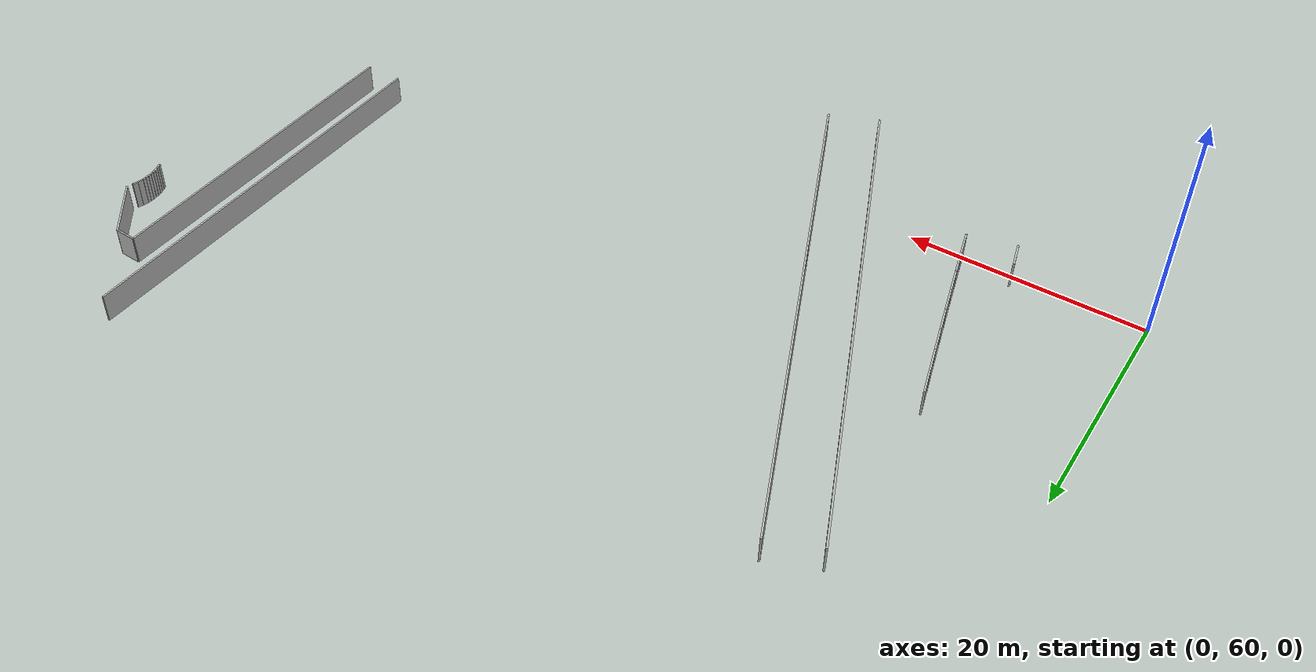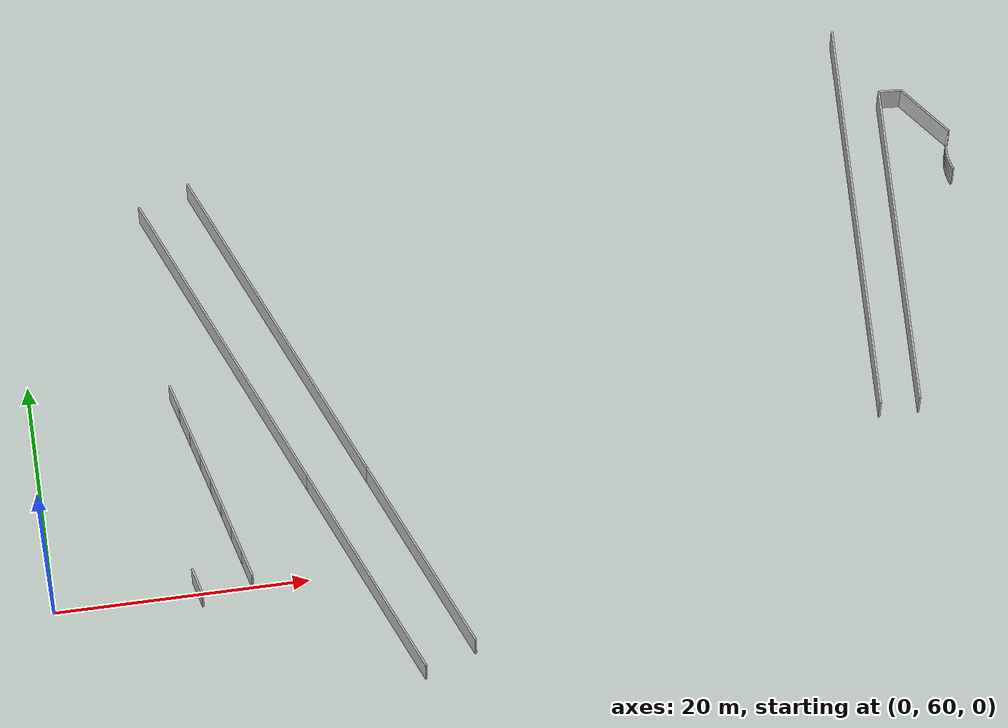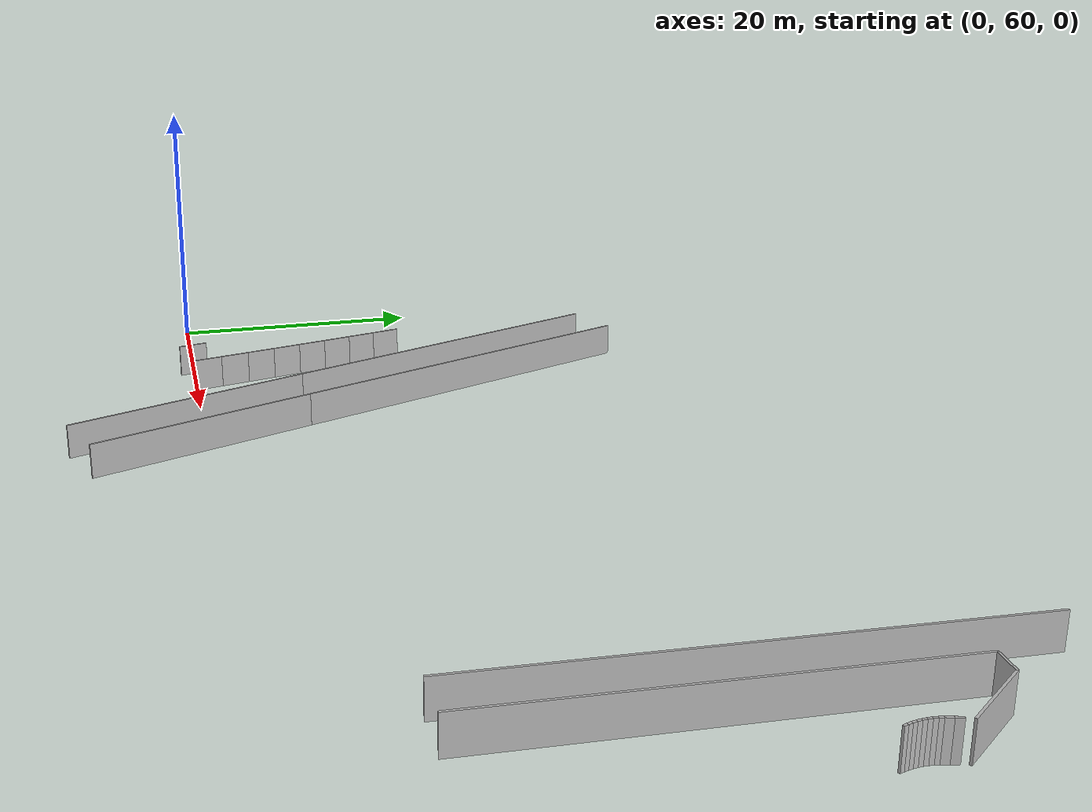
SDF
<sdf version="1.6">
 <model name="sps_2314">
  <static>1</static>
  <allow_auto_disable>0</allow_auto_disable>
  <link name="Wall81">
   <collision name="collision"><geometry><box><size>1.7975 0.15 2.5</size></box></geometry></collision>
   <visual name="visual">
    <geometry><box><size>1.7975 0.15 2.5</size></box></geometry>
    <transparency>0.0</transparency>
   </visual>
   <pose>72.1623 96.0366 1.25 0 0 -0.0584368</pose>
  </link>
  <link name="Wall260">
   <collision name="collision"><geometry><box><size>27.9015 0.15 2.5</size></box></geometry></collision>
   <visual name="visual">
    <geometry><box><size>27.9015 0.15 2.5</size></box></geometry>
    <transparency>0.0</transparency>
   </visual>
   <pose>15.7376 80.8615 1.25 0 0 -1.19328</pose>
  </link>
  <link name="Wall261">
   <collision name="collision"><geometry><box><size>18.9599 0.15 2.5</size></box></geometry></collision>
   <visual name="visual">
    <geometry><box><size>18.9599 0.15 2.5</size></box></geometry>
    <transparency>0.0</transparency>
   </visual>
   <pose>24.3744 59.0807 1.25 0 0 -1.19328</pose>
  </link>
  <link name="Wall325">
   <collision name="collision"><geometry><box><size>5.38312 0.15 2.5</size></box></geometry></collision>
   <visual name="visual">
    <geometry><box><size>5.38312 0.15 2.5</size></box></geometry>
    <transparency>0.0</transparency>
   </visual>
   <pose>74.6453 93.8093 1.25 0 0 -0.940765</pose>
  </link>
  <link name="Wall486">
   <collision name="collision"><geometry><box><size>29.6463 0.15 2.5</size></box></geometry></collision>
   <visual name="visual">
    <geometry><box><size>29.6463 0.15 2.5</size></box></geometry>
    <transparency>0.0</transparency>
   </visual>
   <pose>20.1497 81.6725 1.25 0 0 -1.19329</pose>
  </link>
  <link name="Wall487">
   <collision name="collision"><geometry><box><size>17.2147 0.15 2.5</size></box></geometry></collision>
   <visual name="visual">
    <geometry><box><size>17.2147 0.15 2.5</size></box></geometry>
    <transparency>0.0</transparency>
   </visual>
   <pose>28.7862 59.8918 1.25 0 0 -1.19329</pose>
  </link>
  <link name="Wall588">
   <collision name="collision"><geometry><box><size>34.4283 0.15 2.5</size></box></geometry></collision>
   <visual name="visual">
    <geometry><box><size>34.4283 0.15 2.5</size></box></geometry>
    <transparency>0.0</transparency>
   </visual>
   <pose>67.4748 85.0778 1.25 0 0 -1.62928</pose>
  </link>
  <link name="Wall667">
   <collision name="collision"><geometry><box><size>28.2443 0.15 2.5</size></box></geometry></collision>
   <visual name="visual">
    <geometry><box><size>28.2443 0.15 2.5</size></box></geometry>
    <transparency>0.0</transparency>
   </visual>
   <pose>70.4395 81.9911 1.25 0 0 -1.62929</pose>
  </link>
  <link name="Wall4688">
   <collision name="collision"><geometry><box><size>2.25468 0.15 2.5</size></box></geometry></collision>
   <visual name="visual">
    <geometry><box><size>2.25468 0.15 2.5</size></box></geometry>
    <transparency>0.0</transparency>
   </visual>
   <pose>15.2999 60.9622 1.25 0 -0 1.81055</pose>
  </link>
  <link name="Wall4689">
   <collision name="collision"><geometry><box><size>2.25465 0.15 2.5</size></box></geometry></collision>
   <visual name="visual">
    <geometry><box><size>2.25465 0.15 2.5</size></box></geometry>
    <transparency>0.0</transparency>
   </visual>
   <pose>14.7619 63.1517 1.25 0 -0 1.813</pose>
  </link>
  <link name="Wall4690">
   <collision name="collision"><geometry><box><size>2.25445 0.15 2.5</size></box></geometry></collision>
   <visual name="visual">
    <geometry><box><size>2.25445 0.15 2.5</size></box></geometry>
    <transparency>0.0</transparency>
   </visual>
   <pose>14.2186 65.3398 1.25 0 -0 1.81534</pose>
  </link>
  <link name="Wall4691">
   <collision name="collision"><geometry><box><size>2.25475 0.15 2.5</size></box></geometry></collision>
   <visual name="visual">
    <geometry><box><size>2.25475 0.15 2.5</size></box></geometry>
    <transparency>0.0</transparency>
   </visual>
   <pose>13.6702 67.5267 1.25 0 -0 1.81765</pose>
  </link>
  <link name="Wall4692">
   <collision name="collision"><geometry><box><size>2.25455 0.15 2.5</size></box></geometry></collision>
   <visual name="visual">
    <geometry><box><size>2.25455 0.15 2.5</size></box></geometry>
    <transparency>0.0</transparency>
   </visual>
   <pose>13.1165 69.7123 1.25 0 -0 1.82016</pose>
  </link>
  <link name="Wall4693">
   <collision name="collision"><geometry><box><size>2.25461 0.15 2.5</size></box></geometry></collision>
   <visual name="visual">
    <geometry><box><size>2.25461 0.15 2.5</size></box></geometry>
    <transparency>0.0</transparency>
   </visual>
   <pose>12.5576 71.8965 1.25 0 -0 1.82245</pose>
  </link>
  <link name="Wall4694">
   <collision name="collision"><geometry><box><size>2.25478 0.15 2.5</size></box></geometry></collision>
   <visual name="visual">
    <geometry><box><size>2.25478 0.15 2.5</size></box></geometry>
    <transparency>0.0</transparency>
   </visual>
   <pose>11.9935 74.0795 1.25 0 -0 1.82491</pose>
  </link>
  <link name="Wall4695">
   <collision name="collision"><geometry><box><size>2.25456 0.15 2.5</size></box></geometry></collision>
   <visual name="visual">
    <geometry><box><size>2.25456 0.15 2.5</size></box></geometry>
    <transparency>0.0</transparency>
   </visual>
   <pose>11.4242 76.2611 1.25 0 -0 1.82721</pose>
  </link>
  <link name="Wall6413">
   <collision name="collision"><geometry><box><size>2.24461 0.15 2.5</size></box></geometry></collision>
   <visual name="visual">
    <geometry><box><size>2.24461 0.15 2.5</size></box></geometry>
    <transparency>0.0</transparency>
   </visual>
   <pose>11.2793 59.9785 1.25 0 -0 1.81064</pose>
  </link>
  <link name="Wall8187">
   <collision name="collision"><geometry><box><size>0.473726 0.15 2.5</size></box></geometry></collision>
   <visual name="visual">
    <geometry><box><size>0.473726 0.15 2.5</size></box></geometry>
    <transparency>0.0</transparency>
   </visual>
   <pose>75.9632 90.9766 1.25 0 0 -1.91088</pose>
  </link>
  <link name="Wall8188">
   <collision name="collision"><geometry><box><size>0.473954 0.15 2.5</size></box></geometry></collision>
   <visual name="visual">
    <geometry><box><size>0.473954 0.15 2.5</size></box></geometry>
    <transparency>0.0</transparency>
   </visual>
   <pose>75.821 90.5249 1.25 0 0 -1.84076</pose>
  </link>
  <link name="Wall8189">
   <collision name="collision"><geometry><box><size>0.279126 0.15 2.5</size></box></geometry></collision>
   <visual name="visual">
    <geometry><box><size>0.279126 0.15 2.5</size></box></geometry>
    <transparency>0.0</transparency>
   </visual>
   <pose>75.7358 90.1587 1.25 0 0 -1.72911</pose>
  </link>
  <link name="Wall8190">
   <collision name="collision"><geometry><box><size>0.279262 0.15 2.5</size></box></geometry></collision>
   <visual name="visual">
    <geometry><box><size>0.279262 0.15 2.5</size></box></geometry>
    <transparency>0.0</transparency>
   </visual>
   <pose>75.7017 89.8818 1.25 0 0 -1.65811</pose>
  </link>
  <link name="Wall8191">
   <collision name="collision"><geometry><box><size>0.279037 0.15 2.5</size></box></geometry></collision>
   <visual name="visual">
    <geometry><box><size>0.279037 0.15 2.5</size></box></geometry>
    <transparency>0.0</transparency>
   </visual>
   <pose>75.687 89.6032 1.25 0 0 -1.58873</pose>
  </link>
  <link name="Wall8192">
   <collision name="collision"><geometry><box><size>0.27919 0.15 2.5</size></box></geometry></collision>
   <visual name="visual">
    <geometry><box><size>0.27919 0.15 2.5</size></box></geometry>
    <transparency>0.0</transparency>
   </visual>
   <pose>75.6918 89.3243 1.25 0 0 -1.51852</pose>
  </link>
  <link name="Wall8193">
   <collision name="collision"><geometry><box><size>0.279298 0.15 2.5</size></box></geometry></collision>
   <visual name="visual">
    <geometry><box><size>0.279298 0.15 2.5</size></box></geometry>
    <transparency>0.0</transparency>
   </visual>
   <pose>75.7161 89.0463 1.25 0 0 -1.44877</pose>
  </link>
  <link name="Wall8194">
   <collision name="collision"><geometry><box><size>0.279108 0.15 2.5</size></box></geometry></collision>
   <visual name="visual">
    <geometry><box><size>0.279108 0.15 2.5</size></box></geometry>
    <transparency>0.0</transparency>
   </visual>
   <pose>75.7597 88.7707 1.25 0 0 -1.37893</pose>
  </link>
  <link name="Wall8195">
   <collision name="collision"><geometry><box><size>0.279271 0.15 2.5</size></box></geometry></collision>
   <visual name="visual">
    <geometry><box><size>0.279271 0.15 2.5</size></box></geometry>
    <transparency>0.0</transparency>
   </visual>
   <pose>75.8224 88.4988 1.25 0 0 -1.30928</pose>
  </link>
  <link name="Wall8196">
   <collision name="collision"><geometry><box><size>0.279201 0.15 2.5</size></box></geometry></collision>
   <visual name="visual">
    <geometry><box><size>0.279201 0.15 2.5</size></box></geometry>
    <transparency>0.0</transparency>
   </visual>
   <pose>75.9039 88.2319 1.25 0 0 -1.23971</pose>
  </link>
 </model>
</sdf>
